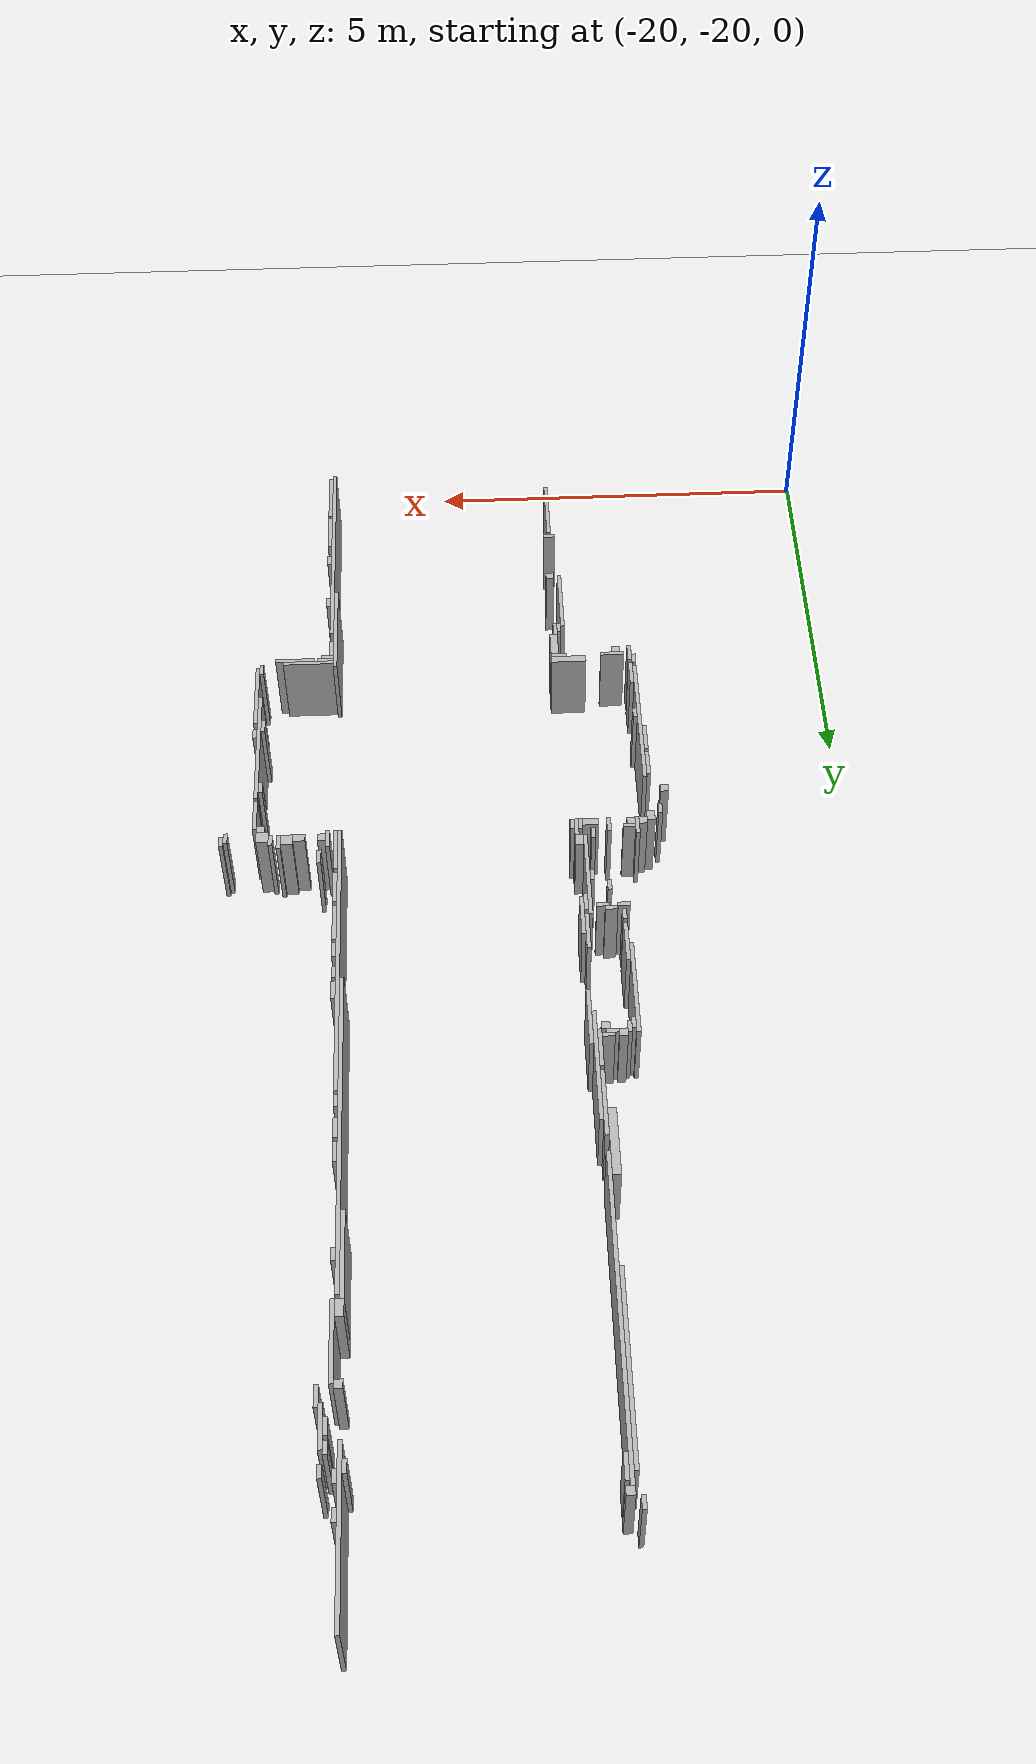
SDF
<sdf version="1.8">
 <world name="building">
  <model name="ground_plane">
   <static>true</static>
   <link name="link">
    <collision name="c"><geometry><plane><normal>0 0 1</normal><size>200 200</size></plane></geometry></collision>
    <visual name="v">
     <geometry><plane><normal>0 0 1</normal><size>200 200</size></plane></geometry>
     <material><ambient>0.9 0.9 0.9 1</ambient><diffuse>0.9 0.9 0.9 1</diffuse></material>
    </visual>
   </link>
  </model>
  <model name="walls">
   <static>true</static>
   <link name="wall_457">
    <pose>-13.725 -4.275 0.500 0 0 0</pose>
    <collision name="c"><geometry><box><size>0.050 1.950 1.000</size></box></geometry></collision>
    <visual name="v">
     <geometry><box><size>0.050 1.950 1.000</size></box></geometry>
     <material><ambient>0.6 0.6 0.6 1</ambient><diffuse>0.7 0.7 0.7 1</diffuse></material>
    </visual>
   </link>
   <link name="wall_469">
    <pose>-16.725 -4.475 0.500 0 0 0</pose>
    <collision name="c"><geometry><box><size>0.050 0.150 1.000</size></box></geometry></collision>
    <visual name="v">
     <geometry><box><size>0.050 0.150 1.000</size></box></geometry>
     <material><ambient>0.6 0.6 0.6 1</ambient><diffuse>0.7 0.7 0.7 1</diffuse></material>
    </visual>
   </link>
   <link name="wall_470">
    <pose>-13.675 -4.475 0.500 0 0 0</pose>
    <collision name="c"><geometry><box><size>0.050 0.150 1.000</size></box></geometry></collision>
    <visual name="v">
     <geometry><box><size>0.050 0.150 1.000</size></box></geometry>
     <material><ambient>0.6 0.6 0.6 1</ambient><diffuse>0.7 0.7 0.7 1</diffuse></material>
    </visual>
   </link>
   <link name="wall_471">
    <pose>-16.600 -4.600 0.500 0 0 0</pose>
    <collision name="c"><geometry><box><size>0.100 0.100 1.000</size></box></geometry></collision>
    <visual name="v">
     <geometry><box><size>0.100 0.100 1.000</size></box></geometry>
     <material><ambient>0.6 0.6 0.6 1</ambient><diffuse>0.7 0.7 0.7 1</diffuse></material>
    </visual>
   </link>
   <link name="wall_475">
    <pose>-16.625 -6.550 0.500 0 0 0</pose>
    <collision name="c"><geometry><box><size>0.050 3.800 1.000</size></box></geometry></collision>
    <visual name="v">
     <geometry><box><size>0.050 3.800 1.000</size></box></geometry>
     <material><ambient>0.6 0.6 0.6 1</ambient><diffuse>0.7 0.7 0.7 1</diffuse></material>
    </visual>
   </link>
   <link name="wall_476">
    <pose>-16.575 -4.850 0.500 0 0 0</pose>
    <collision name="c"><geometry><box><size>0.050 0.300 1.000</size></box></geometry></collision>
    <visual name="v">
     <geometry><box><size>0.050 0.300 1.000</size></box></geometry>
     <material><ambient>0.6 0.6 0.6 1</ambient><diffuse>0.7 0.7 0.7 1</diffuse></material>
    </visual>
   </link>
   <link name="wall_478">
    <pose>-16.675 -5.925 0.500 0 0 0</pose>
    <collision name="c"><geometry><box><size>0.050 2.250 1.000</size></box></geometry></collision>
    <visual name="v">
     <geometry><box><size>0.050 2.250 1.000</size></box></geometry>
     <material><ambient>0.6 0.6 0.6 1</ambient><diffuse>0.7 0.7 0.7 1</diffuse></material>
    </visual>
   </link>
   <link name="wall_479">
    <pose>-13.675 -4.875 0.500 0 0 0</pose>
    <collision name="c"><geometry><box><size>0.050 0.150 1.000</size></box></geometry></collision>
    <visual name="v">
     <geometry><box><size>0.050 0.150 1.000</size></box></geometry>
     <material><ambient>0.6 0.6 0.6 1</ambient><diffuse>0.7 0.7 0.7 1</diffuse></material>
    </visual>
   </link>
   <link name="wall_480">
    <pose>-13.525 -4.925 0.500 0 0 0</pose>
    <collision name="c"><geometry><box><size>0.050 0.150 1.000</size></box></geometry></collision>
    <visual name="v">
     <geometry><box><size>0.050 0.150 1.000</size></box></geometry>
     <material><ambient>0.6 0.6 0.6 1</ambient><diffuse>0.7 0.7 0.7 1</diffuse></material>
    </visual>
   </link>
   <link name="wall_481">
    <pose>-13.775 -4.975 0.500 0 0 0</pose>
    <collision name="c"><geometry><box><size>0.050 0.150 1.000</size></box></geometry></collision>
    <visual name="v">
     <geometry><box><size>0.050 0.150 1.000</size></box></geometry>
     <material><ambient>0.6 0.6 0.6 1</ambient><diffuse>0.7 0.7 0.7 1</diffuse></material>
    </visual>
   </link>
   <link name="wall_483">
    <pose>-13.575 -5.175 0.500 0 0 0</pose>
    <collision name="c"><geometry><box><size>0.050 0.150 1.000</size></box></geometry></collision>
    <visual name="v">
     <geometry><box><size>0.050 0.150 1.000</size></box></geometry>
     <material><ambient>0.6 0.6 0.6 1</ambient><diffuse>0.7 0.7 0.7 1</diffuse></material>
    </visual>
   </link>
   <link name="wall_485">
    <pose>-13.525 -5.400 0.500 0 0 0</pose>
    <collision name="c"><geometry><box><size>0.050 0.500 1.000</size></box></geometry></collision>
    <visual name="v">
     <geometry><box><size>0.050 0.500 1.000</size></box></geometry>
     <material><ambient>0.6 0.6 0.6 1</ambient><diffuse>0.7 0.7 0.7 1</diffuse></material>
    </visual>
   </link>
   <link name="wall_487">
    <pose>-13.575 -5.400 0.500 0 0 0</pose>
    <collision name="c"><geometry><box><size>0.050 0.200 1.000</size></box></geometry></collision>
    <visual name="v">
     <geometry><box><size>0.050 0.200 1.000</size></box></geometry>
     <material><ambient>0.6 0.6 0.6 1</ambient><diffuse>0.7 0.7 0.7 1</diffuse></material>
    </visual>
   </link>
   <link name="wall_490">
    <pose>-13.475 -5.725 0.500 0 0 0</pose>
    <collision name="c"><geometry><box><size>0.050 0.250 1.000</size></box></geometry></collision>
    <visual name="v">
     <geometry><box><size>0.050 0.250 1.000</size></box></geometry>
     <material><ambient>0.6 0.6 0.6 1</ambient><diffuse>0.7 0.7 0.7 1</diffuse></material>
    </visual>
   </link>
   <link name="wall_492">
    <pose>-13.700 -5.850 0.500 0 0 0</pose>
    <collision name="c"><geometry><box><size>0.100 0.100 1.000</size></box></geometry></collision>
    <visual name="v">
     <geometry><box><size>0.100 0.100 1.000</size></box></geometry>
     <material><ambient>0.6 0.6 0.6 1</ambient><diffuse>0.7 0.7 0.7 1</diffuse></material>
    </visual>
   </link>
   <link name="wall_494">
    <pose>-13.625 -6.325 0.500 0 0 0</pose>
    <collision name="c"><geometry><box><size>0.050 0.950 1.000</size></box></geometry></collision>
    <visual name="v">
     <geometry><box><size>0.050 0.950 1.000</size></box></geometry>
     <material><ambient>0.6 0.6 0.6 1</ambient><diffuse>0.7 0.7 0.7 1</diffuse></material>
    </visual>
   </link>
   <link name="wall_504">
    <pose>-13.700 -6.700 0.500 0 0 0</pose>
    <collision name="c"><geometry><box><size>0.100 0.200 1.000</size></box></geometry></collision>
    <visual name="v">
     <geometry><box><size>0.100 0.200 1.000</size></box></geometry>
     <material><ambient>0.6 0.6 0.6 1</ambient><diffuse>0.7 0.7 0.7 1</diffuse></material>
    </visual>
   </link>
   <link name="wall_506">
    <pose>-13.725 -7.325 0.500 0 0 0</pose>
    <collision name="c"><geometry><box><size>0.050 1.050 1.000</size></box></geometry></collision>
    <visual name="v">
     <geometry><box><size>0.050 1.050 1.000</size></box></geometry>
     <material><ambient>0.6 0.6 0.6 1</ambient><diffuse>0.7 0.7 0.7 1</diffuse></material>
    </visual>
   </link>
   <link name="wall_507">
    <pose>-13.675 -8.875 0.500 0 0 0</pose>
    <collision name="c"><geometry><box><size>0.050 4.050 1.000</size></box></geometry></collision>
    <visual name="v">
     <geometry><box><size>0.050 4.050 1.000</size></box></geometry>
     <material><ambient>0.6 0.6 0.6 1</ambient><diffuse>0.7 0.7 0.7 1</diffuse></material>
    </visual>
   </link>
   <link name="wall_511">
    <pose>-13.625 -7.325 0.500 0 0 0</pose>
    <collision name="c"><geometry><box><size>0.050 0.150 1.000</size></box></geometry></collision>
    <visual name="v">
     <geometry><box><size>0.050 0.150 1.000</size></box></geometry>
     <material><ambient>0.6 0.6 0.6 1</ambient><diffuse>0.7 0.7 0.7 1</diffuse></material>
    </visual>
   </link>
   <link name="wall_515">
    <pose>-16.700 -8.575 0.500 0 0 0</pose>
    <collision name="c"><geometry><box><size>0.100 0.850 1.000</size></box></geometry></collision>
    <visual name="v">
     <geometry><box><size>0.100 0.850 1.000</size></box></geometry>
     <material><ambient>0.6 0.6 0.6 1</ambient><diffuse>0.7 0.7 0.7 1</diffuse></material>
    </visual>
   </link>
   <link name="wall_516">
    <pose>-13.625 -8.575 0.500 0 0 0</pose>
    <collision name="c"><geometry><box><size>0.050 0.250 1.000</size></box></geometry></collision>
    <visual name="v">
     <geometry><box><size>0.050 0.250 1.000</size></box></geometry>
     <material><ambient>0.6 0.6 0.6 1</ambient><diffuse>0.7 0.7 0.7 1</diffuse></material>
    </visual>
   </link>
   <link name="wall_519">
    <pose>-16.625 -9.075 0.500 0 0 0</pose>
    <collision name="c"><geometry><box><size>0.050 0.850 1.000</size></box></geometry></collision>
    <visual name="v">
     <geometry><box><size>0.050 0.850 1.000</size></box></geometry>
     <material><ambient>0.6 0.6 0.6 1</ambient><diffuse>0.7 0.7 0.7 1</diffuse></material>
    </visual>
   </link>
   <link name="wall_520">
    <pose>-13.625 -8.875 0.500 0 0 0</pose>
    <collision name="c"><geometry><box><size>0.050 0.250 1.000</size></box></geometry></collision>
    <visual name="v">
     <geometry><box><size>0.050 0.250 1.000</size></box></geometry>
     <material><ambient>0.6 0.6 0.6 1</ambient><diffuse>0.7 0.7 0.7 1</diffuse></material>
    </visual>
   </link>
   <link name="wall_521">
    <pose>-16.575 -9.575 0.500 0 0 0</pose>
    <collision name="c"><geometry><box><size>0.050 1.450 1.000</size></box></geometry></collision>
    <visual name="v">
     <geometry><box><size>0.050 1.450 1.000</size></box></geometry>
     <material><ambient>0.6 0.6 0.6 1</ambient><diffuse>0.7 0.7 0.7 1</diffuse></material>
    </visual>
   </link>
   <link name="wall_524">
    <pose>-13.625 -9.225 0.500 0 0 0</pose>
    <collision name="c"><geometry><box><size>0.050 0.150 1.000</size></box></geometry></collision>
    <visual name="v">
     <geometry><box><size>0.050 0.150 1.000</size></box></geometry>
     <material><ambient>0.6 0.6 0.6 1</ambient><diffuse>0.7 0.7 0.7 1</diffuse></material>
    </visual>
   </link>
   <link name="wall_526">
    <pose>-13.625 -11.225 0.500 0 0 0</pose>
    <collision name="c"><geometry><box><size>0.050 3.750 1.000</size></box></geometry></collision>
    <visual name="v">
     <geometry><box><size>0.050 3.750 1.000</size></box></geometry>
     <material><ambient>0.6 0.6 0.6 1</ambient><diffuse>0.7 0.7 0.7 1</diffuse></material>
    </visual>
   </link>
   <link name="wall_527">
    <pose>-16.625 -9.800 0.500 0 0 0</pose>
    <collision name="c"><geometry><box><size>0.050 0.500 1.000</size></box></geometry></collision>
    <visual name="v">
     <geometry><box><size>0.050 0.500 1.000</size></box></geometry>
     <material><ambient>0.6 0.6 0.6 1</ambient><diffuse>0.7 0.7 0.7 1</diffuse></material>
    </visual>
   </link>
   <link name="wall_529">
    <pose>-16.525 -10.225 0.500 0 0 0</pose>
    <collision name="c"><geometry><box><size>0.050 0.750 1.000</size></box></geometry></collision>
    <visual name="v">
     <geometry><box><size>0.050 0.750 1.000</size></box></geometry>
     <material><ambient>0.6 0.6 0.6 1</ambient><diffuse>0.7 0.7 0.7 1</diffuse></material>
    </visual>
   </link>
   <link name="wall_530">
    <pose>-16.900 -10.000 0.500 0 0 0</pose>
    <collision name="c"><geometry><box><size>0.100 0.100 1.000</size></box></geometry></collision>
    <visual name="v">
     <geometry><box><size>0.100 0.100 1.000</size></box></geometry>
     <material><ambient>0.6 0.6 0.6 1</ambient><diffuse>0.7 0.7 0.7 1</diffuse></material>
    </visual>
   </link>
   <link name="wall_531">
    <pose>-16.725 -9.975 0.500 0 0 0</pose>
    <collision name="c"><geometry><box><size>0.150 0.050 1.000</size></box></geometry></collision>
    <visual name="v">
     <geometry><box><size>0.150 0.050 1.000</size></box></geometry>
     <material><ambient>0.6 0.6 0.6 1</ambient><diffuse>0.7 0.7 0.7 1</diffuse></material>
    </visual>
   </link>
   <link name="wall_532">
    <pose>-17.075 -10.625 0.500 0 0 0</pose>
    <collision name="c"><geometry><box><size>0.050 1.250 1.000</size></box></geometry></collision>
    <visual name="v">
     <geometry><box><size>0.050 1.250 1.000</size></box></geometry>
     <material><ambient>0.6 0.6 0.6 1</ambient><diffuse>0.7 0.7 0.7 1</diffuse></material>
    </visual>
   </link>
   <link name="wall_533">
    <pose>-16.975 -10.075 0.500 0 0 0</pose>
    <collision name="c"><geometry><box><size>0.050 0.150 1.000</size></box></geometry></collision>
    <visual name="v">
     <geometry><box><size>0.050 0.150 1.000</size></box></geometry>
     <material><ambient>0.6 0.6 0.6 1</ambient><diffuse>0.7 0.7 0.7 1</diffuse></material>
    </visual>
   </link>
   <link name="wall_534">
    <pose>-16.775 -10.025 0.500 0 0 0</pose>
    <collision name="c"><geometry><box><size>0.150 0.050 1.000</size></box></geometry></collision>
    <visual name="v">
     <geometry><box><size>0.150 0.050 1.000</size></box></geometry>
     <material><ambient>0.6 0.6 0.6 1</ambient><diffuse>0.7 0.7 0.7 1</diffuse></material>
    </visual>
   </link>
   <link name="wall_535">
    <pose>-17.025 -10.125 0.500 0 0 0</pose>
    <collision name="c"><geometry><box><size>0.050 0.150 1.000</size></box></geometry></collision>
    <visual name="v">
     <geometry><box><size>0.050 0.150 1.000</size></box></geometry>
     <material><ambient>0.6 0.6 0.6 1</ambient><diffuse>0.7 0.7 0.7 1</diffuse></material>
    </visual>
   </link>
   <link name="wall_536">
    <pose>-16.700 -10.100 0.500 0 0 0</pose>
    <collision name="c"><geometry><box><size>0.100 0.100 1.000</size></box></geometry></collision>
    <visual name="v">
     <geometry><box><size>0.100 0.100 1.000</size></box></geometry>
     <material><ambient>0.6 0.6 0.6 1</ambient><diffuse>0.7 0.7 0.7 1</diffuse></material>
    </visual>
   </link>
   <link name="wall_540">
    <pose>-13.575 -10.725 0.500 0 0 0</pose>
    <collision name="c"><geometry><box><size>0.050 0.250 1.000</size></box></geometry></collision>
    <visual name="v">
     <geometry><box><size>0.050 0.250 1.000</size></box></geometry>
     <material><ambient>0.6 0.6 0.6 1</ambient><diffuse>0.7 0.7 0.7 1</diffuse></material>
    </visual>
   </link>
   <link name="wall_542">
    <pose>-13.575 -10.975 0.500 0 0 0</pose>
    <collision name="c"><geometry><box><size>0.050 0.150 1.000</size></box></geometry></collision>
    <visual name="v">
     <geometry><box><size>0.050 0.150 1.000</size></box></geometry>
     <material><ambient>0.6 0.6 0.6 1</ambient><diffuse>0.7 0.7 0.7 1</diffuse></material>
    </visual>
   </link>
   <link name="wall_544">
    <pose>-17.025 -11.275 0.500 0 0 0</pose>
    <collision name="c"><geometry><box><size>0.050 0.550 1.000</size></box></geometry></collision>
    <visual name="v">
     <geometry><box><size>0.050 0.550 1.000</size></box></geometry>
     <material><ambient>0.6 0.6 0.6 1</ambient><diffuse>0.7 0.7 0.7 1</diffuse></material>
    </visual>
   </link>
   <link name="wall_548">
    <pose>-16.575 -11.450 0.500 0 0 0</pose>
    <collision name="c"><geometry><box><size>0.050 0.500 1.000</size></box></geometry></collision>
    <visual name="v">
     <geometry><box><size>0.050 0.500 1.000</size></box></geometry>
     <material><ambient>0.6 0.6 0.6 1</ambient><diffuse>0.7 0.7 0.7 1</diffuse></material>
    </visual>
   </link>
   <link name="wall_549">
    <pose>-13.575 -11.300 0.500 0 0 0</pose>
    <collision name="c"><geometry><box><size>0.050 0.200 1.000</size></box></geometry></collision>
    <visual name="v">
     <geometry><box><size>0.050 0.200 1.000</size></box></geometry>
     <material><ambient>0.6 0.6 0.6 1</ambient><diffuse>0.7 0.7 0.7 1</diffuse></material>
    </visual>
   </link>
   <link name="wall_554">
    <pose>-16.525 -11.675 0.500 0 0 0</pose>
    <collision name="c"><geometry><box><size>0.050 0.550 1.000</size></box></geometry></collision>
    <visual name="v">
     <geometry><box><size>0.050 0.550 1.000</size></box></geometry>
     <material><ambient>0.6 0.6 0.6 1</ambient><diffuse>0.7 0.7 0.7 1</diffuse></material>
    </visual>
   </link>
   <link name="wall_557">
    <pose>-13.575 -11.700 0.500 0 0 0</pose>
    <collision name="c"><geometry><box><size>0.050 0.500 1.000</size></box></geometry></collision>
    <visual name="v">
     <geometry><box><size>0.050 0.500 1.000</size></box></geometry>
     <material><ambient>0.6 0.6 0.6 1</ambient><diffuse>0.7 0.7 0.7 1</diffuse></material>
    </visual>
   </link>
   <link name="wall_568">
    <pose>-17.025 -11.675 0.500 0 0 0</pose>
    <collision name="c"><geometry><box><size>0.050 0.150 1.000</size></box></geometry></collision>
    <visual name="v">
     <geometry><box><size>0.050 0.150 1.000</size></box></geometry>
     <material><ambient>0.6 0.6 0.6 1</ambient><diffuse>0.7 0.7 0.7 1</diffuse></material>
    </visual>
   </link>
   <link name="wall_570">
    <pose>-16.625 -12.300 0.500 0 0 0</pose>
    <collision name="c"><geometry><box><size>0.050 1.200 1.000</size></box></geometry></collision>
    <visual name="v">
     <geometry><box><size>0.050 1.200 1.000</size></box></geometry>
     <material><ambient>0.6 0.6 0.6 1</ambient><diffuse>0.7 0.7 0.7 1</diffuse></material>
    </visual>
   </link>
   <link name="wall_571">
    <pose>-16.875 -11.775 0.500 0 0 0</pose>
    <collision name="c"><geometry><box><size>0.150 0.050 1.000</size></box></geometry></collision>
    <visual name="v">
     <geometry><box><size>0.150 0.050 1.000</size></box></geometry>
     <material><ambient>0.6 0.6 0.6 1</ambient><diffuse>0.7 0.7 0.7 1</diffuse></material>
    </visual>
   </link>
   <link name="wall_572">
    <pose>-16.575 -11.875 0.500 0 0 0</pose>
    <collision name="c"><geometry><box><size>0.050 0.250 1.000</size></box></geometry></collision>
    <visual name="v">
     <geometry><box><size>0.050 0.250 1.000</size></box></geometry>
     <material><ambient>0.6 0.6 0.6 1</ambient><diffuse>0.7 0.7 0.7 1</diffuse></material>
    </visual>
   </link>
   <link name="wall_573">
    <pose>-17.025 -11.825 0.500 0 0 0</pose>
    <collision name="c"><geometry><box><size>0.150 0.050 1.000</size></box></geometry></collision>
    <visual name="v">
     <geometry><box><size>0.150 0.050 1.000</size></box></geometry>
     <material><ambient>0.6 0.6 0.6 1</ambient><diffuse>0.7 0.7 0.7 1</diffuse></material>
    </visual>
   </link>
   <link name="wall_574">
    <pose>-16.775 -11.825 0.500 0 0 0</pose>
    <collision name="c"><geometry><box><size>0.150 0.050 1.000</size></box></geometry></collision>
    <visual name="v">
     <geometry><box><size>0.150 0.050 1.000</size></box></geometry>
     <material><ambient>0.6 0.6 0.6 1</ambient><diffuse>0.7 0.7 0.7 1</diffuse></material>
    </visual>
   </link>
   <link name="wall_577">
    <pose>-13.575 -12.225 0.500 0 0 0</pose>
    <collision name="c"><geometry><box><size>0.050 0.450 1.000</size></box></geometry></collision>
    <visual name="v">
     <geometry><box><size>0.050 0.450 1.000</size></box></geometry>
     <material><ambient>0.6 0.6 0.6 1</ambient><diffuse>0.7 0.7 0.7 1</diffuse></material>
    </visual>
   </link>
   <link name="wall_578">
    <pose>-16.875 -12.125 0.500 0 0 0</pose>
    <collision name="c"><geometry><box><size>0.050 0.150 1.000</size></box></geometry></collision>
    <visual name="v">
     <geometry><box><size>0.050 0.150 1.000</size></box></geometry>
     <material><ambient>0.6 0.6 0.6 1</ambient><diffuse>0.7 0.7 0.7 1</diffuse></material>
    </visual>
   </link>
   <link name="wall_580">
    <pose>-16.675 -12.275 0.500 0 0 0</pose>
    <collision name="c"><geometry><box><size>0.050 0.150 1.000</size></box></geometry></collision>
    <visual name="v">
     <geometry><box><size>0.050 0.150 1.000</size></box></geometry>
     <material><ambient>0.6 0.6 0.6 1</ambient><diffuse>0.7 0.7 0.7 1</diffuse></material>
    </visual>
   </link>
   <link name="wall_583">
    <pose>-13.575 -12.800 0.500 0 0 0</pose>
    <collision name="c"><geometry><box><size>0.050 0.600 1.000</size></box></geometry></collision>
    <visual name="v">
     <geometry><box><size>0.050 0.600 1.000</size></box></geometry>
     <material><ambient>0.6 0.6 0.6 1</ambient><diffuse>0.7 0.7 0.7 1</diffuse></material>
    </visual>
   </link>
   <link name="wall_584">
    <pose>-13.375 -12.700 0.500 0 0 0</pose>
    <collision name="c"><geometry><box><size>0.050 0.200 1.000</size></box></geometry></collision>
    <visual name="v">
     <geometry><box><size>0.050 0.200 1.000</size></box></geometry>
     <material><ambient>0.6 0.6 0.6 1</ambient><diffuse>0.7 0.7 0.7 1</diffuse></material>
    </visual>
   </link>
   <link name="wall_587">
    <pose>-16.550 -12.825 0.500 0 0 0</pose>
    <collision name="c"><geometry><box><size>0.100 0.150 1.000</size></box></geometry></collision>
    <visual name="v">
     <geometry><box><size>0.100 0.150 1.000</size></box></geometry>
     <material><ambient>0.6 0.6 0.6 1</ambient><diffuse>0.7 0.7 0.7 1</diffuse></material>
    </visual>
   </link>
   <link name="wall_588">
    <pose>-16.725 -12.925 0.500 0 0 0</pose>
    <collision name="c"><geometry><box><size>0.050 0.150 1.000</size></box></geometry></collision>
    <visual name="v">
     <geometry><box><size>0.050 0.150 1.000</size></box></geometry>
     <material><ambient>0.6 0.6 0.6 1</ambient><diffuse>0.7 0.7 0.7 1</diffuse></material>
    </visual>
   </link>
   <link name="wall_589">
    <pose>-13.475 -12.975 0.500 0 0 0</pose>
    <collision name="c"><geometry><box><size>0.050 0.250 1.000</size></box></geometry></collision>
    <visual name="v">
     <geometry><box><size>0.050 0.250 1.000</size></box></geometry>
     <material><ambient>0.6 0.6 0.6 1</ambient><diffuse>0.7 0.7 0.7 1</diffuse></material>
    </visual>
   </link>
   <link name="wall_590">
    <pose>-12.875 -12.950 0.500 0 0 0</pose>
    <collision name="c"><geometry><box><size>0.050 0.200 1.000</size></box></geometry></collision>
    <visual name="v">
     <geometry><box><size>0.050 0.200 1.000</size></box></geometry>
     <material><ambient>0.6 0.6 0.6 1</ambient><diffuse>0.7 0.7 0.7 1</diffuse></material>
    </visual>
   </link>
   <link name="wall_591">
    <pose>-17.275 -13.025 0.500 0 0 0</pose>
    <collision name="c"><geometry><box><size>0.050 0.250 1.000</size></box></geometry></collision>
    <visual name="v">
     <geometry><box><size>0.050 0.250 1.000</size></box></geometry>
     <material><ambient>0.6 0.6 0.6 1</ambient><diffuse>0.7 0.7 0.7 1</diffuse></material>
    </visual>
   </link>
   <link name="wall_592">
    <pose>-16.525 -13.025 0.500 0 0 0</pose>
    <collision name="c"><geometry><box><size>0.050 0.250 1.000</size></box></geometry></collision>
    <visual name="v">
     <geometry><box><size>0.050 0.250 1.000</size></box></geometry>
     <material><ambient>0.6 0.6 0.6 1</ambient><diffuse>0.7 0.7 0.7 1</diffuse></material>
    </visual>
   </link>
   <link name="wall_593">
    <pose>-12.975 -12.975 0.500 0 0 0</pose>
    <collision name="c"><geometry><box><size>0.150 0.150 1.000</size></box></geometry></collision>
    <visual name="v">
     <geometry><box><size>0.150 0.150 1.000</size></box></geometry>
     <material><ambient>0.6 0.6 0.6 1</ambient><diffuse>0.7 0.7 0.7 1</diffuse></material>
    </visual>
   </link>
   <link name="wall_594">
    <pose>-12.775 -12.975 0.500 0 0 0</pose>
    <collision name="c"><geometry><box><size>0.050 0.150 1.000</size></box></geometry></collision>
    <visual name="v">
     <geometry><box><size>0.050 0.150 1.000</size></box></geometry>
     <material><ambient>0.6 0.6 0.6 1</ambient><diffuse>0.7 0.7 0.7 1</diffuse></material>
    </visual>
   </link>
   <link name="wall_595">
    <pose>-12.175 -12.975 0.500 0 0 0</pose>
    <collision name="c"><geometry><box><size>0.050 0.150 1.000</size></box></geometry></collision>
    <visual name="v">
     <geometry><box><size>0.050 0.150 1.000</size></box></geometry>
     <material><ambient>0.6 0.6 0.6 1</ambient><diffuse>0.7 0.7 0.7 1</diffuse></material>
    </visual>
   </link>
   <link name="wall_596">
    <pose>-16.925 -13.050 0.500 0 0 0</pose>
    <collision name="c"><geometry><box><size>0.050 0.200 1.000</size></box></geometry></collision>
    <visual name="v">
     <geometry><box><size>0.050 0.200 1.000</size></box></geometry>
     <material><ambient>0.6 0.6 0.6 1</ambient><diffuse>0.7 0.7 0.7 1</diffuse></material>
    </visual>
   </link>
   <link name="wall_597">
    <pose>-13.400 -13.000 0.500 0 0 0</pose>
    <collision name="c"><geometry><box><size>0.100 0.100 1.000</size></box></geometry></collision>
    <visual name="v">
     <geometry><box><size>0.100 0.100 1.000</size></box></geometry>
     <material><ambient>0.6 0.6 0.6 1</ambient><diffuse>0.7 0.7 0.7 1</diffuse></material>
    </visual>
   </link>
   <link name="wall_598">
    <pose>-13.125 -13.000 0.500 0 0 0</pose>
    <collision name="c"><geometry><box><size>0.150 0.100 1.000</size></box></geometry></collision>
    <visual name="v">
     <geometry><box><size>0.150 0.100 1.000</size></box></geometry>
     <material><ambient>0.6 0.6 0.6 1</ambient><diffuse>0.7 0.7 0.7 1</diffuse></material>
    </visual>
   </link>
   <link name="wall_599">
    <pose>-12.675 -13.025 0.500 0 0 0</pose>
    <collision name="c"><geometry><box><size>0.150 0.150 1.000</size></box></geometry></collision>
    <visual name="v">
     <geometry><box><size>0.150 0.150 1.000</size></box></geometry>
     <material><ambient>0.6 0.6 0.6 1</ambient><diffuse>0.7 0.7 0.7 1</diffuse></material>
    </visual>
   </link>
   <link name="wall_600">
    <pose>-12.225 -13.025 0.500 0 0 0</pose>
    <collision name="c"><geometry><box><size>0.050 0.150 1.000</size></box></geometry></collision>
    <visual name="v">
     <geometry><box><size>0.050 0.150 1.000</size></box></geometry>
     <material><ambient>0.6 0.6 0.6 1</ambient><diffuse>0.7 0.7 0.7 1</diffuse></material>
    </visual>
   </link>
   <link name="wall_601">
    <pose>-17.175 -13.025 0.500 0 0 0</pose>
    <collision name="c"><geometry><box><size>0.150 0.050 1.000</size></box></geometry></collision>
    <visual name="v">
     <geometry><box><size>0.150 0.050 1.000</size></box></geometry>
     <material><ambient>0.6 0.6 0.6 1</ambient><diffuse>0.7 0.7 0.7 1</diffuse></material>
    </visual>
   </link>
   <link name="wall_602">
    <pose>-16.575 -13.075 0.500 0 0 0</pose>
    <collision name="c"><geometry><box><size>0.050 0.150 1.000</size></box></geometry></collision>
    <visual name="v">
     <geometry><box><size>0.050 0.150 1.000</size></box></geometry>
     <material><ambient>0.6 0.6 0.6 1</ambient><diffuse>0.7 0.7 0.7 1</diffuse></material>
    </visual>
   </link>
   <link name="wall_603">
    <pose>-16.475 -13.075 0.500 0 0 0</pose>
    <collision name="c"><geometry><box><size>0.050 0.150 1.000</size></box></geometry></collision>
    <visual name="v">
     <geometry><box><size>0.050 0.150 1.000</size></box></geometry>
     <material><ambient>0.6 0.6 0.6 1</ambient><diffuse>0.7 0.7 0.7 1</diffuse></material>
    </visual>
   </link>
   <link name="wall_604">
    <pose>-17.350 -13.100 0.500 0 0 0</pose>
    <collision name="c"><geometry><box><size>0.100 0.100 1.000</size></box></geometry></collision>
    <visual name="v">
     <geometry><box><size>0.100 0.100 1.000</size></box></geometry>
     <material><ambient>0.6 0.6 0.6 1</ambient><diffuse>0.7 0.7 0.7 1</diffuse></material>
    </visual>
   </link>
   <link name="wall_605">
    <pose>-17.200 -13.100 0.500 0 0 0</pose>
    <collision name="c"><geometry><box><size>0.100 0.100 1.000</size></box></geometry></collision>
    <visual name="v">
     <geometry><box><size>0.100 0.100 1.000</size></box></geometry>
     <material><ambient>0.6 0.6 0.6 1</ambient><diffuse>0.7 0.7 0.7 1</diffuse></material>
    </visual>
   </link>
   <link name="wall_606">
    <pose>-16.700 -13.100 0.500 0 0 0</pose>
    <collision name="c"><geometry><box><size>0.200 0.100 1.000</size></box></geometry></collision>
    <visual name="v">
     <geometry><box><size>0.200 0.100 1.000</size></box></geometry>
     <material><ambient>0.6 0.6 0.6 1</ambient><diffuse>0.7 0.7 0.7 1</diffuse></material>
    </visual>
   </link>
   <link name="wall_607">
    <pose>-17.450 -13.175 0.500 0 0 0</pose>
    <collision name="c"><geometry><box><size>0.100 0.150 1.000</size></box></geometry></collision>
    <visual name="v">
     <geometry><box><size>0.100 0.150 1.000</size></box></geometry>
     <material><ambient>0.6 0.6 0.6 1</ambient><diffuse>0.7 0.7 0.7 1</diffuse></material>
    </visual>
   </link>
   <link name="wall_608">
    <pose>-12.650 -13.150 0.500 0 0 0</pose>
    <collision name="c"><geometry><box><size>0.100 0.100 1.000</size></box></geometry></collision>
    <visual name="v">
     <geometry><box><size>0.100 0.100 1.000</size></box></geometry>
     <material><ambient>0.6 0.6 0.6 1</ambient><diffuse>0.7 0.7 0.7 1</diffuse></material>
    </visual>
   </link>
   <link name="wall_610">
    <pose>-12.575 -13.375 0.500 0 0 0</pose>
    <collision name="c"><geometry><box><size>0.050 0.450 1.000</size></box></geometry></collision>
    <visual name="v">
     <geometry><box><size>0.050 0.450 1.000</size></box></geometry>
     <material><ambient>0.6 0.6 0.6 1</ambient><diffuse>0.7 0.7 0.7 1</diffuse></material>
    </visual>
   </link>
   <link name="wall_611">
    <pose>-17.575 -13.275 0.500 0 0 0</pose>
    <collision name="c"><geometry><box><size>0.050 0.150 1.000</size></box></geometry></collision>
    <visual name="v">
     <geometry><box><size>0.050 0.150 1.000</size></box></geometry>
     <material><ambient>0.6 0.6 0.6 1</ambient><diffuse>0.7 0.7 0.7 1</diffuse></material>
    </visual>
   </link>
   <link name="wall_615">
    <pose>-17.650 -13.600 0.500 0 0 0</pose>
    <collision name="c"><geometry><box><size>0.100 0.100 1.000</size></box></geometry></collision>
    <visual name="v">
     <geometry><box><size>0.100 0.100 1.000</size></box></geometry>
     <material><ambient>0.6 0.6 0.6 1</ambient><diffuse>0.7 0.7 0.7 1</diffuse></material>
    </visual>
   </link>
   <link name="wall_617">
    <pose>-12.575 -14.500 0.500 0 0 0</pose>
    <collision name="c"><geometry><box><size>0.050 1.700 1.000</size></box></geometry></collision>
    <visual name="v">
     <geometry><box><size>0.050 1.700 1.000</size></box></geometry>
     <material><ambient>0.6 0.6 0.6 1</ambient><diffuse>0.7 0.7 0.7 1</diffuse></material>
    </visual>
   </link>
   <link name="wall_618">
    <pose>-12.625 -13.825 0.500 0 0 0</pose>
    <collision name="c"><geometry><box><size>0.050 0.150 1.000</size></box></geometry></collision>
    <visual name="v">
     <geometry><box><size>0.050 0.150 1.000</size></box></geometry>
     <material><ambient>0.6 0.6 0.6 1</ambient><diffuse>0.7 0.7 0.7 1</diffuse></material>
    </visual>
   </link>
   <link name="wall_619">
    <pose>-17.425 -14.750 0.500 0 0 0</pose>
    <collision name="c"><geometry><box><size>0.050 1.900 1.000</size></box></geometry></collision>
    <visual name="v">
     <geometry><box><size>0.050 1.900 1.000</size></box></geometry>
     <material><ambient>0.6 0.6 0.6 1</ambient><diffuse>0.7 0.7 0.7 1</diffuse></material>
    </visual>
   </link>
   <link name="wall_621">
    <pose>-17.475 -14.025 0.500 0 0 0</pose>
    <collision name="c"><geometry><box><size>0.050 0.350 1.000</size></box></geometry></collision>
    <visual name="v">
     <geometry><box><size>0.050 0.350 1.000</size></box></geometry>
     <material><ambient>0.6 0.6 0.6 1</ambient><diffuse>0.7 0.7 0.7 1</diffuse></material>
    </visual>
   </link>
   <link name="wall_625">
    <pose>-17.475 -14.450 0.500 0 0 0</pose>
    <collision name="c"><geometry><box><size>0.050 0.400 1.000</size></box></geometry></collision>
    <visual name="v">
     <geometry><box><size>0.050 0.400 1.000</size></box></geometry>
     <material><ambient>0.6 0.6 0.6 1</ambient><diffuse>0.7 0.7 0.7 1</diffuse></material>
    </visual>
   </link>
   <link name="wall_645">
    <pose>-12.525 -14.725 0.500 0 0 0</pose>
    <collision name="c"><geometry><box><size>0.050 0.150 1.000</size></box></geometry></collision>
    <visual name="v">
     <geometry><box><size>0.050 0.150 1.000</size></box></geometry>
     <material><ambient>0.6 0.6 0.6 1</ambient><diffuse>0.7 0.7 0.7 1</diffuse></material>
    </visual>
   </link>
   <link name="wall_648">
    <pose>-12.625 -14.850 0.500 0 0 0</pose>
    <collision name="c"><geometry><box><size>0.050 0.200 1.000</size></box></geometry></collision>
    <visual name="v">
     <geometry><box><size>0.050 0.200 1.000</size></box></geometry>
     <material><ambient>0.6 0.6 0.6 1</ambient><diffuse>0.7 0.7 0.7 1</diffuse></material>
    </visual>
   </link>
   <link name="wall_650">
    <pose>-17.375 -14.875 0.500 0 0 0</pose>
    <collision name="c"><geometry><box><size>0.050 0.150 1.000</size></box></geometry></collision>
    <visual name="v">
     <geometry><box><size>0.050 0.150 1.000</size></box></geometry>
     <material><ambient>0.6 0.6 0.6 1</ambient><diffuse>0.7 0.7 0.7 1</diffuse></material>
    </visual>
   </link>
   <link name="wall_651">
    <pose>-12.525 -15.375 0.500 0 0 0</pose>
    <collision name="c"><geometry><box><size>0.050 0.950 1.000</size></box></geometry></collision>
    <visual name="v">
     <geometry><box><size>0.050 0.950 1.000</size></box></geometry>
     <material><ambient>0.6 0.6 0.6 1</ambient><diffuse>0.7 0.7 0.7 1</diffuse></material>
    </visual>
   </link>
   <link name="wall_656">
    <pose>-17.375 -15.575 0.500 0 0 0</pose>
    <collision name="c"><geometry><box><size>0.050 0.350 1.000</size></box></geometry></collision>
    <visual name="v">
     <geometry><box><size>0.050 0.350 1.000</size></box></geometry>
     <material><ambient>0.6 0.6 0.6 1</ambient><diffuse>0.7 0.7 0.7 1</diffuse></material>
    </visual>
   </link>
   <link name="wall_659">
    <pose>-17.425 -15.825 0.500 0 0 0</pose>
    <collision name="c"><geometry><box><size>0.050 0.150 1.000</size></box></geometry></collision>
    <visual name="v">
     <geometry><box><size>0.050 0.150 1.000</size></box></geometry>
     <material><ambient>0.6 0.6 0.6 1</ambient><diffuse>0.7 0.7 0.7 1</diffuse></material>
    </visual>
   </link>
   <link name="wall_660">
    <pose>-12.575 -15.825 0.500 0 0 0</pose>
    <collision name="c"><geometry><box><size>0.050 0.150 1.000</size></box></geometry></collision>
    <visual name="v">
     <geometry><box><size>0.050 0.150 1.000</size></box></geometry>
     <material><ambient>0.6 0.6 0.6 1</ambient><diffuse>0.7 0.7 0.7 1</diffuse></material>
    </visual>
   </link>
   <link name="wall_661">
    <pose>-17.375 -15.925 0.500 0 0 0</pose>
    <collision name="c"><geometry><box><size>0.050 0.250 1.000</size></box></geometry></collision>
    <visual name="v">
     <geometry><box><size>0.050 0.250 1.000</size></box></geometry>
     <material><ambient>0.6 0.6 0.6 1</ambient><diffuse>0.7 0.7 0.7 1</diffuse></material>
    </visual>
   </link>
   <link name="wall_662">
    <pose>-16.575 -15.850 0.500 0 0 0</pose>
    <collision name="c"><geometry><box><size>0.450 0.100 1.000</size></box></geometry></collision>
    <visual name="v">
     <geometry><box><size>0.450 0.100 1.000</size></box></geometry>
     <material><ambient>0.6 0.6 0.6 1</ambient><diffuse>0.7 0.7 0.7 1</diffuse></material>
    </visual>
   </link>
   <link name="wall_663">
    <pose>-13.525 -16.525 0.500 0 0 0</pose>
    <collision name="c"><geometry><box><size>0.050 1.350 1.000</size></box></geometry></collision>
    <visual name="v">
     <geometry><box><size>0.050 1.350 1.000</size></box></geometry>
     <material><ambient>0.6 0.6 0.6 1</ambient><diffuse>0.7 0.7 0.7 1</diffuse></material>
    </visual>
   </link>
   <link name="wall_664">
    <pose>-17.150 -15.925 0.500 0 0 0</pose>
    <collision name="c"><geometry><box><size>0.300 0.050 1.000</size></box></geometry></collision>
    <visual name="v">
     <geometry><box><size>0.300 0.050 1.000</size></box></geometry>
     <material><ambient>0.6 0.6 0.6 1</ambient><diffuse>0.7 0.7 0.7 1</diffuse></material>
    </visual>
   </link>
   <link name="wall_665">
    <pose>-16.450 -15.925 0.500 0 0 0</pose>
    <collision name="c"><geometry><box><size>0.200 0.050 1.000</size></box></geometry></collision>
    <visual name="v">
     <geometry><box><size>0.200 0.050 1.000</size></box></geometry>
     <material><ambient>0.6 0.6 0.6 1</ambient><diffuse>0.7 0.7 0.7 1</diffuse></material>
    </visual>
   </link>
   <link name="wall_666">
    <pose>-13.175 -15.925 0.500 0 0 0</pose>
    <collision name="c"><geometry><box><size>0.650 0.050 1.000</size></box></geometry></collision>
    <visual name="v">
     <geometry><box><size>0.650 0.050 1.000</size></box></geometry>
     <material><ambient>0.6 0.6 0.6 1</ambient><diffuse>0.7 0.7 0.7 1</diffuse></material>
    </visual>
   </link>
   <link name="wall_667">
    <pose>-17.200 -16.000 0.500 0 0 0</pose>
    <collision name="c"><geometry><box><size>0.100 0.100 1.000</size></box></geometry></collision>
    <visual name="v">
     <geometry><box><size>0.100 0.100 1.000</size></box></geometry>
     <material><ambient>0.6 0.6 0.6 1</ambient><diffuse>0.7 0.7 0.7 1</diffuse></material>
    </visual>
   </link>
   <link name="wall_668">
    <pose>-16.400 -16.125 0.500 0 0 0</pose>
    <collision name="c"><geometry><box><size>0.100 0.350 1.000</size></box></geometry></collision>
    <visual name="v">
     <geometry><box><size>0.100 0.350 1.000</size></box></geometry>
     <material><ambient>0.6 0.6 0.6 1</ambient><diffuse>0.7 0.7 0.7 1</diffuse></material>
    </visual>
   </link>
   <link name="wall_669">
    <pose>-13.400 -15.975 0.500 0 0 0</pose>
    <collision name="c"><geometry><box><size>0.200 0.050 1.000</size></box></geometry></collision>
    <visual name="v">
     <geometry><box><size>0.200 0.050 1.000</size></box></geometry>
     <material><ambient>0.6 0.6 0.6 1</ambient><diffuse>0.7 0.7 0.7 1</diffuse></material>
    </visual>
   </link>
   <link name="wall_670">
    <pose>-13.000 -15.975 0.500 0 0 0</pose>
    <collision name="c"><geometry><box><size>0.500 0.050 1.000</size></box></geometry></collision>
    <visual name="v">
     <geometry><box><size>0.500 0.050 1.000</size></box></geometry>
     <material><ambient>0.6 0.6 0.6 1</ambient><diffuse>0.7 0.7 0.7 1</diffuse></material>
    </visual>
   </link>
   <link name="wall_671">
    <pose>-13.425 -16.025 0.500 0 0 0</pose>
    <collision name="c"><geometry><box><size>0.150 0.050 1.000</size></box></geometry></collision>
    <visual name="v">
     <geometry><box><size>0.150 0.050 1.000</size></box></geometry>
     <material><ambient>0.6 0.6 0.6 1</ambient><diffuse>0.7 0.7 0.7 1</diffuse></material>
    </visual>
   </link>
   <link name="wall_672">
    <pose>-13.475 -16.175 0.500 0 0 0</pose>
    <collision name="c"><geometry><box><size>0.050 0.250 1.000</size></box></geometry></collision>
    <visual name="v">
     <geometry><box><size>0.050 0.250 1.000</size></box></geometry>
     <material><ambient>0.6 0.6 0.6 1</ambient><diffuse>0.7 0.7 0.7 1</diffuse></material>
    </visual>
   </link>
   <link name="wall_676">
    <pose>-16.425 -16.400 0.500 0 0 0</pose>
    <collision name="c"><geometry><box><size>0.050 0.200 1.000</size></box></geometry></collision>
    <visual name="v">
     <geometry><box><size>0.050 0.200 1.000</size></box></geometry>
     <material><ambient>0.6 0.6 0.6 1</ambient><diffuse>0.7 0.7 0.7 1</diffuse></material>
    </visual>
   </link>
   <link name="wall_677">
    <pose>-16.475 -16.425 0.500 0 0 0</pose>
    <collision name="c"><geometry><box><size>0.050 0.150 1.000</size></box></geometry></collision>
    <visual name="v">
     <geometry><box><size>0.050 0.150 1.000</size></box></geometry>
     <material><ambient>0.6 0.6 0.6 1</ambient><diffuse>0.7 0.7 0.7 1</diffuse></material>
    </visual>
   </link>
   <link name="wall_679">
    <pose>-16.525 -16.925 0.500 0 0 0</pose>
    <collision name="c"><geometry><box><size>0.050 0.950 1.000</size></box></geometry></collision>
    <visual name="v">
     <geometry><box><size>0.050 0.950 1.000</size></box></geometry>
     <material><ambient>0.6 0.6 0.6 1</ambient><diffuse>0.7 0.7 0.7 1</diffuse></material>
    </visual>
   </link>
   <link name="wall_680">
    <pose>-13.475 -17.975 0.500 0 0 0</pose>
    <collision name="c"><geometry><box><size>0.050 3.050 1.000</size></box></geometry></collision>
    <visual name="v">
     <geometry><box><size>0.050 3.050 1.000</size></box></geometry>
     <material><ambient>0.6 0.6 0.6 1</ambient><diffuse>0.7 0.7 0.7 1</diffuse></material>
    </visual>
   </link>
   <link name="wall_686">
    <pose>-13.425 -17.025 0.500 0 0 0</pose>
    <collision name="c"><geometry><box><size>0.050 0.150 1.000</size></box></geometry></collision>
    <visual name="v">
     <geometry><box><size>0.050 0.150 1.000</size></box></geometry>
     <material><ambient>0.6 0.6 0.6 1</ambient><diffuse>0.7 0.7 0.7 1</diffuse></material>
    </visual>
   </link>
   <link name="wall_691">
    <pose>-16.400 -17.400 0.500 0 0 0</pose>
    <collision name="c"><geometry><box><size>0.100 0.100 1.000</size></box></geometry></collision>
    <visual name="v">
     <geometry><box><size>0.100 0.100 1.000</size></box></geometry>
     <material><ambient>0.6 0.6 0.6 1</ambient><diffuse>0.7 0.7 0.7 1</diffuse></material>
    </visual>
   </link>
   <link name="wall_694">
    <pose>-13.425 -17.825 0.500 0 0 0</pose>
    <collision name="c"><geometry><box><size>0.050 0.150 1.000</size></box></geometry></collision>
    <visual name="v">
     <geometry><box><size>0.050 0.150 1.000</size></box></geometry>
     <material><ambient>0.6 0.6 0.6 1</ambient><diffuse>0.7 0.7 0.7 1</diffuse></material>
    </visual>
   </link>
   <link name="wall_698">
    <pose>-13.425 -18.375 0.500 0 0 0</pose>
    <collision name="c"><geometry><box><size>0.050 0.550 1.000</size></box></geometry></collision>
    <visual name="v">
     <geometry><box><size>0.050 0.550 1.000</size></box></geometry>
     <material><ambient>0.6 0.6 0.6 1</ambient><diffuse>0.7 0.7 0.7 1</diffuse></material>
    </visual>
   </link>
   <link name="wall_700">
    <pose>-16.425 -18.175 0.500 0 0 0</pose>
    <collision name="c"><geometry><box><size>0.150 0.050 1.000</size></box></geometry></collision>
    <visual name="v">
     <geometry><box><size>0.150 0.050 1.000</size></box></geometry>
     <material><ambient>0.6 0.6 0.6 1</ambient><diffuse>0.7 0.7 0.7 1</diffuse></material>
    </visual>
   </link>
   <link name="wall_702">
    <pose>-16.425 -18.700 0.500 0 0 0</pose>
    <collision name="c"><geometry><box><size>0.050 0.900 1.000</size></box></geometry></collision>
    <visual name="v">
     <geometry><box><size>0.050 0.900 1.000</size></box></geometry>
     <material><ambient>0.6 0.6 0.6 1</ambient><diffuse>0.7 0.7 0.7 1</diffuse></material>
    </visual>
   </link>
   <link name="wall_705">
    <pose>-13.425 -19.075 0.500 0 0 0</pose>
    <collision name="c"><geometry><box><size>0.050 0.750 1.000</size></box></geometry></collision>
    <visual name="v">
     <geometry><box><size>0.050 0.750 1.000</size></box></geometry>
     <material><ambient>0.6 0.6 0.6 1</ambient><diffuse>0.7 0.7 0.7 1</diffuse></material>
    </visual>
   </link>
  </model>
 </world>
</sdf>
